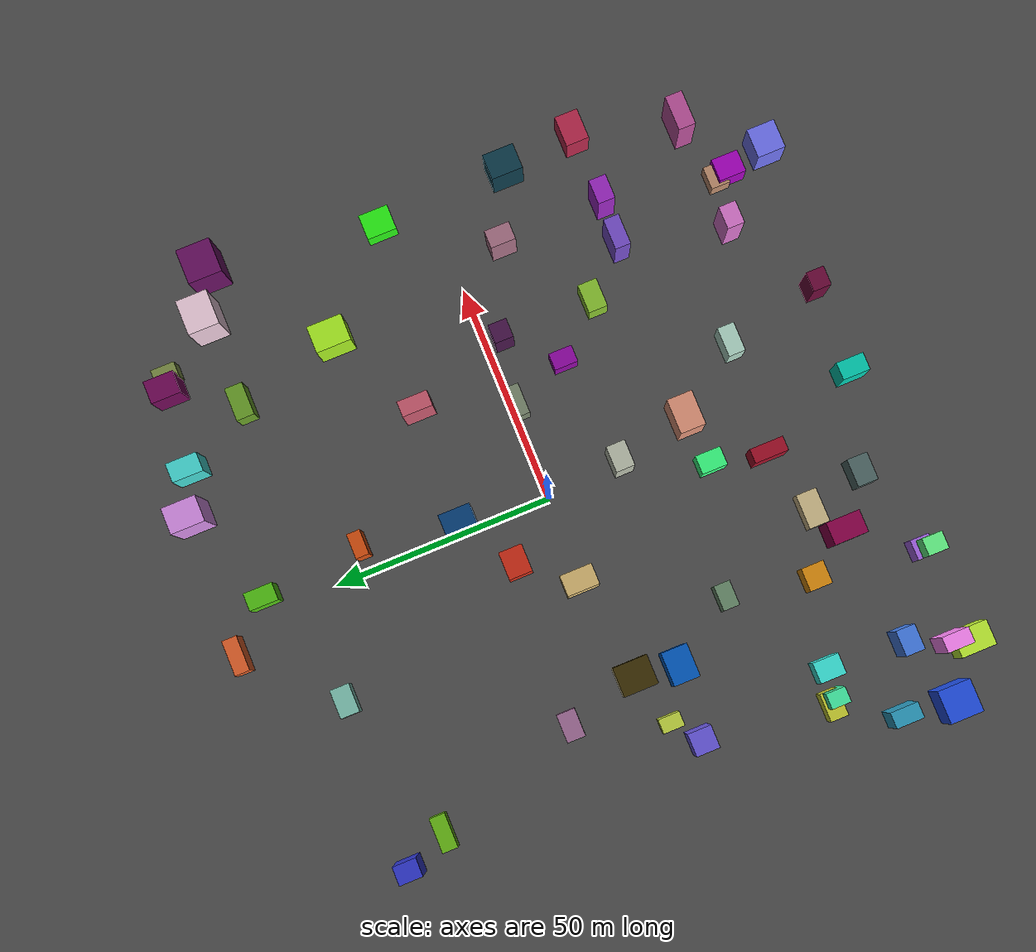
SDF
<?xml version="1.0" ?>
<sdf version="1.8">
  <world name="urban_city">
    <physics name="1ms" type="ignored">
      <max_step_size>0.001</max_step_size>
      <real_time_factor>1.0</real_time_factor>
    </physics>
    <plugin filename="gz-sim-physics-system" name="gz::sim::systems::Physics"></plugin>
    <plugin filename="gz-sim-user-commands-system" name="gz::sim::systems::UserCommands"></plugin>
    <plugin filename="gz-sim-scene-broadcaster-system" name="gz::sim::systems::SceneBroadcaster"></plugin>
    <plugin filename="gz-sim-sensors-system" name="gz::sim::systems::Sensors">
        <render_engine>ogre2</render_engine>
    </plugin>
    <plugin filename="gz-sim-wind-effects-system" name="gz::sim::systems::WindEffects"></plugin>

    <light type="directional" name="sun">
      <cast_shadows>true</cast_shadows>
      <pose>0 0 10 0 0 0</pose>
      <diffuse>0.8 0.8 0.8 1</diffuse>
      <specular>0.2 0.2 0.2 1</specular>
      <direction>-0.5 0.1 -0.9</direction>
    </light>

    <model name="ground_plane">
      <static>true</static>
      <link name="link">
        <collision name="collision">
          <geometry><plane><normal>0 0 1</normal><size>200 200</size></plane></geometry>
          <surface>
            <friction>
              <ode>
                <mu>100</mu>
                <mu2>50</mu2>
              </ode>
            </friction>
          </surface>
        </collision>
        <visual name="visual">
          <geometry><plane><normal>0 0 1</normal><size>200 200</size></plane></geometry>
          <material><ambient>0.3 0.3 0.3 1</ambient><diffuse>0.3 0.3 0.3 1</diffuse></material>
        </visual>
      </link>
    </model>

    <model name="building_0">
      <static>true</static>
      <pose>20.914019768682564 -71.24838671659995 6.182356070820062 0 0 0</pose>
      <link name="link">
        <collision name="collision">
          <geometry><box><size>4.3751465918455965 4.116053690744113 12.364712141640124</size></box></geometry>
        </collision>
        <visual name="visual">
          <geometry><box><size>4.3751465918455965 4.116053690744113 12.364712141640124</size></box></geometry>
          <material>
            <ambient>0.6766994874229113 0.8921795677048454 0.08693883262941615 1</ambient>
            <diffuse>0.4219218196852704 0.029797219438070344 0.21863797480360336 1</diffuse>
          </material>
        </visual>
      </link>
    </model>

    <model name="building_1">
      <static>true</static>
      <pose>0.803293215504354 -71.01960454742046 5.224707403016083 0 0 0</pose>
      <link name="link">
        <collision name="collision">
          <geometry><box><size>3.9941882534332427 6.249422188897616 10.449414806032166</size></box></geometry>
        </collision>
        <visual name="visual">
          <geometry><box><size>3.9941882534332427 6.249422188897616 10.449414806032166</size></box></geometry>
          <material>
            <ambient>0.2204406220406967 0.5892656838759087 0.8094304566778266 1</ambient>
            <diffuse>0.006498759678061017 0.8058192518328079 0.6981393949882269 1</diffuse>
          </material>
        </visual>
      </link>
    </model>

    <model name="building_2">
      <static>true</static>
      <pose>-23.962422522301217 -51.67807502823277 2.9637292169007394 0 0 0</pose>
      <link name="link">
        <collision name="collision">
          <geometry><box><size>7.786065361033906 4.682972725563134 5.927458433801479</size></box></geometry>
        </collision>
        <visual name="visual">
          <geometry><box><size>7.786065361033906 4.682972725563134 5.927458433801479</size></box></geometry>
          <material>
            <ambient>0.09671637683346401 0.8474943663474598 0.6037260313668911 1</ambient>
            <diffuse>0.8071282732743802 0.7297317866938179 0.5362280914547007 1</diffuse>
          </material>
        </visual>
      </link>
    </model>

    <model name="building_3">
      <static>true</static>
      <pose>70.96736459690558 -18.219843418746976 5.592598761821231 0 0 0</pose>
      <link name="link">
        <collision name="collision">
          <geometry><box><size>5.760203156366135 7.1470233212649745 11.185197523642461</size></box></geometry>
        </collision>
        <visual name="visual">
          <geometry><box><size>5.760203156366135 7.1470233212649745 11.185197523642461</size></box></geometry>
          <material>
            <ambient>0.8617069003107772 0.577352145256762 0.7045718362149235 1</ambient>
            <diffuse>0.045824383655662215 0.22789827565154686 0.28938796360210717 1</diffuse>
          </material>
        </visual>
      </link>
    </model>

    <model name="building_4">
      <static>true</static>
      <pose>-63.031203461455874 -40.081367045845475 5.678422221322001 0 0 0</pose>
      <link name="link">
        <collision name="collision">
          <geometry><box><size>3.5050071470486457 4.38986801555046 11.356844442644002</size></box></geometry>
        </collision>
        <visual name="visual">
          <geometry><box><size>3.5050071470486457 4.38986801555046 11.356844442644002</size></box></geometry>
          <material>
            <ambient>0.36483217897008424 0.37018096711688264 0.2095070307714877 1</ambient>
            <diffuse>0.26697782204911336 0.936654587712494 0.6480353852465935 1</diffuse>
          </material>
        </visual>
      </link>
    </model>

    <model name="building_5">
      <static>true</static>
      <pose>16.36965085004823 -49.32920277028545 4.397277208788239 0 0 0</pose>
      <link name="link">
        <collision name="collision">
          <geometry><box><size>6.645633989751746 3.817012468809642 8.794554417576478</size></box></geometry>
        </collision>
        <visual name="visual">
          <geometry><box><size>6.645633989751746 3.817012468809642 8.794554417576478</size></box></geometry>
          <material>
            <ambient>0.9895233506365952 0.6399997598540929 0.5569497437746462 1</ambient>
            <diffuse>0.6846142509898746 0.8428519201898096 0.7759999115462448 1</diffuse>
          </material>
        </visual>
      </link>
    </model>

    <model name="building_6">
      <static>true</static>
      <pose>-40.64278920538435 -70.18496341439433 3.5549142179316324 0 0 0</pose>
      <link name="link">
        <collision name="collision">
          <geometry><box><size>4.577265240295409 4.338704379878513 7.109828435863265</size></box></geometry>
        </collision>
        <visual name="visual">
          <geometry><box><size>4.577265240295409 4.338704379878513 7.109828435863265</size></box></geometry>
          <material>
            <ambient>0.9429097143350544 0.8763676264726689 0.3146778807984779 1</ambient>
            <diffuse>0.65543866529488 0.39563190106066426 0.9145475897405435 1</diffuse>
          </material>
        </visual>
      </link>
    </model>

    <model name="building_7">
      <static>true</static>
      <pose>-6.1722221118901786 -35.26797502529213 3.8137080426146763 0 0 0</pose>
      <link name="link">
        <collision name="collision">
          <geometry><box><size>4.233137538469917 5.806840670815754 7.627416085229353</size></box></geometry>
        </collision>
        <visual name="visual">
          <geometry><box><size>4.233137538469917 5.806840670815754 7.627416085229353</size></box></geometry>
          <material>
            <ambient>0.5845859902235405 0.897822883602477 0.39940050514039727 1</ambient>
            <diffuse>0.21932075915728333 0.9975376064951103 0.5095262936764645 1</diffuse>
          </material>
        </visual>
      </link>
    </model>

    <model name="building_8">
      <static>true</static>
      <pose>-61.363588173930914 -67.93254368628982 6.46039682181482 0 0 0</pose>
      <link name="link">
        <collision name="collision">
          <geometry><box><size>3.548245651753296 6.13723020851545 12.92079364362964</size></box></geometry>
        </collision>
        <visual name="visual">
          <geometry><box><size>3.548245651753296 6.13723020851545 12.92079364362964</size></box></geometry>
          <material>
            <ambient>0.42215996679968404 0.06352770615195713 0.38161928650653676 1</ambient>
            <diffuse>0.9961213802400968 0.529114345099137 0.9710783776136181 1</diffuse>
          </material>
        </visual>
      </link>
    </model>

    <model name="building_9">
      <static>true</static>
      <pose>54.11695533517471 -73.27784670857706 5.184851652043976 0 0 0</pose>
      <link name="link">
        <collision name="collision">
          <geometry><box><size>6.603609096800973 6.408551845132874 10.369703304087952</size></box></geometry>
        </collision>
        <visual name="visual">
          <geometry><box><size>6.603609096800973 6.408551845132874 10.369703304087952</size></box></geometry>
          <material>
            <ambient>0.2668251899525428 0.6409617985798081 0.11155217359587644 1</ambient>
            <diffuse>0.434765250669105 0.45372370632920644 0.9538159275210801 1</diffuse>
          </material>
        </visual>
      </link>
    </model>

    <model name="building_10">
      <static>true</static>
      <pose>56.3779410567291 -35.491642387336384 7.063139196724102 0 0 0</pose>
      <link name="link">
        <collision name="collision">
          <geometry><box><size>5.502930565251491 3.893259402650657 14.126278393448205</size></box></geometry>
        </collision>
        <visual name="visual">
          <geometry><box><size>5.502930565251491 3.893259402650657 14.126278393448205</size></box></geometry>
          <material>
            <ambient>0.8705185698367669 0.2984447914486329 0.6389494948660052 1</ambient>
            <diffuse>0.6089702114381723 0.1528392685496348 0.7625108000751513 1</diffuse>
          </material>
        </visual>
      </link>
    </model>

    <model name="building_11">
      <static>true</static>
      <pose>5.906854517943856 41.79397179458374 4.120780285023366 0 0 0</pose>
      <link name="link">
        <collision name="collision">
          <geometry><box><size>5.651768360975888 3.0028594806397173 8.241560570046731</size></box></geometry>
        </collision>
        <visual name="visual">
          <geometry><box><size>5.651768360975888 3.0028594806397173 8.241560570046731</size></box></geometry>
          <material>
            <ambient>0.019476742385832302 0.9290986162646171 0.8787218778231842 1</ambient>
            <diffuse>0.8316655293611794 0.30751412540266143 0.05792516649418755 1</diffuse>
          </material>
        </visual>
      </link>
    </model>

    <model name="building_12">
      <static>true</static>
      <pose>56.701439880606074 67.04241679469911 2.846062592341918 0 0 0</pose>
      <link name="link">
        <collision name="collision">
          <geometry><box><size>3.428267260339394 5.429952316583069 5.692125184683836</size></box></geometry>
        </collision>
        <visual name="visual">
          <geometry><box><size>3.428267260339394 5.429952316583069 5.692125184683836</size></box></geometry>
          <material>
            <ambient>0.7606021652572316 0.7658344293069878 0.1283914644997628 1</ambient>
            <diffuse>0.4752823780987313 0.5498035934949439 0.2650566289400591 1</diffuse>
          </material>
        </visual>
      </link>
    </model>

    <model name="building_13">
      <static>true</static>
      <pose>55.864956162788616 -11.52930896986696 6.149655345449881 0 0 0</pose>
      <link name="link">
        <collision name="collision">
          <geometry><box><size>4.058991027210411 5.696480443897292 12.299310690899762</size></box></geometry>
        </collision>
        <visual name="visual">
          <geometry><box><size>4.058991027210411 5.696480443897292 12.299310690899762</size></box></geometry>
          <material>
            <ambient>0.2011510633896959 0.31171629130089495 0.9951493566608947 1</ambient>
            <diffuse>0.6498780576394535 0.43810008391450406 0.5175758410355906 1</diffuse>
          </material>
        </visual>
      </link>
    </model>

    <model name="building_14">
      <static>true</static>
      <pose>-56.849370619760144 -41.2953994452664 3.650573662982885 0 0 0</pose>
      <link name="link">
        <collision name="collision">
          <geometry><box><size>4.690427810737276 5.941543592286166 7.30114732596577</size></box></geometry>
        </collision>
        <visual name="visual">
          <geometry><box><size>4.690427810737276 5.941543592286166 7.30114732596577</size></box></geometry>
          <material>
            <ambient>0.22021738445155947 0.07099308600903254 0.6311029572700989 1</ambient>
            <diffuse>0.22894178381115438 0.905420013006128 0.8596354002537465 1</diffuse>
          </material>
        </visual>
      </link>
    </model>

    <model name="building_15">
      <static>true</static>
      <pose>-64.37139751670199 -39.29930484465072 3.161559243625125 0 0 0</pose>
      <link name="link">
        <collision name="collision">
          <geometry><box><size>6.3448888914814034 4.071184036852193 6.32311848725025</size></box></geometry>
        </collision>
        <visual name="visual">
          <geometry><box><size>6.3448888914814034 4.071184036852193 6.32311848725025</size></box></geometry>
          <material>
            <ambient>0.935514240580671 0.5710430933252845 0.47267102631179414 1</ambient>
            <diffuse>0.7846194242907534 0.8074969977666434 0.1904099143618777 1</diffuse>
          </material>
        </visual>
      </link>
    </model>

    <model name="building_16">
      <static>true</static>
      <pose>-60.4603778656765 -10.342322639043374 6.145379247299253 0 0 0</pose>
      <link name="link">
        <collision name="collision">
          <geometry><box><size>5.117893115099604 5.335123340183375 12.290758494598506</size></box></geometry>
        </collision>
        <visual name="visual">
          <geometry><box><size>5.117893115099604 5.335123340183375 12.290758494598506</size></box></geometry>
          <material>
            <ambient>0.6733645472933015 0.9841652113659661 0.09841787115195888 1</ambient>
            <diffuse>0.4026212821022688 0.33930260539496315 0.8616725363527911 1</diffuse>
          </material>
        </visual>
      </link>
    </model>

    <model name="building_17">
      <static>true</static>
      <pose>-37.70154991195716 -46.46866373387827 3.8927257233347023 0 0 0</pose>
      <link name="link">
        <collision name="collision">
          <geometry><box><size>5.243067739165659 5.109408199172021 7.785451446669405</size></box></geometry>
        </collision>
        <visual name="visual">
          <geometry><box><size>5.243067739165659 5.109408199172021 7.785451446669405</size></box></geometry>
          <material>
            <ambient>0.2498064478821005 0.9232655992760128 0.44313074505345695 1</ambient>
            <diffuse>0.8613491047618306 0.5503253124498481 0.05058832952488124 1</diffuse>
          </material>
        </visual>
      </link>
    </model>

    <model name="building_18">
      <static>true</static>
      <pose>74.89237026190898 50.404137761992786 6.743478672071527 0 0 0</pose>
      <link name="link">
        <collision name="collision">
          <geometry><box><size>7.8449812864237565 7.631834915040638 13.486957344143054</size></box></geometry>
        </collision>
        <visual name="visual">
          <geometry><box><size>7.8449812864237565 7.631834915040638 13.486957344143054</size></box></geometry>
          <material>
            <ambient>0.16631111060391401 0.48564112545071847 0.21374729919918167 1</ambient>
            <diffuse>0.4010402925494526 0.058635399972178925 0.3789731189769161 1</diffuse>
          </material>
        </visual>
      </link>
    </model>

    <model name="building_19">
      <static>true</static>
      <pose>72.7963265669589 -35.21954127417721 4.615037429950815 0 0 0</pose>
      <link name="link">
        <collision name="collision">
          <geometry><box><size>6.920353009742847 5.275041836695717 9.23007485990163</size></box></geometry>
        </collision>
        <visual name="visual">
          <geometry><box><size>6.920353009742847 5.275041836695717 9.23007485990163</size></box></geometry>
          <material>
            <ambient>0.9573176408596732 0.9954226894927138 0.5557683234056182 1</ambient>
            <diffuse>0.718408275296326 0.15479682527406413 0.2967078254945642 1</diffuse>
          </material>
        </visual>
      </link>
    </model>

    <model name="building_20">
      <static>true</static>
      <pose>70.30640474537381 11.877043622438435 2.7858263645374155 0 0 0</pose>
      <link name="link">
        <collision name="collision">
          <geometry><box><size>5.7109760068713715 6.739877801895321 5.571652729074831</size></box></geometry>
        </collision>
        <visual name="visual">
          <geometry><box><size>5.7109760068713715 6.739877801895321 5.571652729074831</size></box></geometry>
          <material>
            <ambient>0.5841775944589712 0.5028503829195136 0.8527198920482854 1</ambient>
            <diffuse>0.15743272793948326 0.9607789032744504 0.08011146524058688 1</diffuse>
          </material>
        </visual>
      </link>
    </model>

    <model name="building_21">
      <static>true</static>
      <pose>-47.12625585289152 14.255265967504144 3.099433069735621 0 0 0</pose>
      <link name="link">
        <collision name="collision">
          <geometry><box><size>6.376062768020451 4.176019475004656 6.198866139471242</size></box></geometry>
        </collision>
        <visual name="visual">
          <geometry><box><size>6.376062768020451 4.176019475004656 6.198866139471242</size></box></geometry>
          <material>
            <ambient>0.8902873141294375 0.24621534778862486 0.5945191535334412 1</ambient>
            <diffuse>0.6193815103321031 0.4192249153358725 0.5836722892912247 1</diffuse>
          </material>
        </visual>
      </link>
    </model>

    <model name="building_22">
      <static>true</static>
      <pose>3.417407329793832 65.20593866046408 3.69342976307923 0 0 0</pose>
      <link name="link">
        <collision name="collision">
          <geometry><box><size>4.021295997117682 6.580959003947074 7.38685952615846</size></box></geometry>
        </collision>
        <visual name="visual">
          <geometry><box><size>4.021295997117682 6.580959003947074 7.38685952615846</size></box></geometry>
          <material>
            <ambient>0.3957858467912545 0.6716902229599713 0.2999970797987622 1</ambient>
            <diffuse>0.31617719627185403 0.7518644924144021 0.07254311449315731 1</diffuse>
          </material>
        </visual>
      </link>
    </model>

    <model name="building_23">
      <static>true</static>
      <pose>-6.257171607212086 74.76816612816634 3.565771561335202 0 0 0</pose>
      <link name="link">
        <collision name="collision">
          <geometry><box><size>7.980482239275473 3.3663036054981648 7.131543122670404</size></box></geometry>
        </collision>
        <visual name="visual">
          <geometry><box><size>7.980482239275473 3.3663036054981648 7.131543122670404</size></box></geometry>
          <material>
            <ambient>0.26520041475040135 0.9332593779937091 0.8808641736864395 1</ambient>
            <diffuse>0.8792702424845428 0.36952708873888396 0.15774683235723197 1</diffuse>
          </material>
        </visual>
      </link>
    </model>

    <model name="building_24">
      <static>true</static>
      <pose>50.06174319597105 30.53098876310564 5.7698815885536625 0 0 0</pose>
      <link name="link">
        <collision name="collision">
          <geometry><box><size>6.0583888286297505 7.936165318157522 11.539763177107325</size></box></geometry>
        </collision>
        <visual name="visual">
          <geometry><box><size>6.0583888286297505 7.936165318157522 11.539763177107325</size></box></geometry>
          <material>
            <ambient>0.007823107152157949 0.8171041351154616 0.2993787521999779 1</ambient>
            <diffuse>0.6633887149660773 0.9389300039271039 0.13429111439336772 1</diffuse>
          </material>
        </visual>
      </link>
    </model>

    <model name="building_25">
      <static>true</static>
      <pose>-57.68569943713467 -58.94460334358735 5.52414913515112 0 0 0</pose>
      <link name="link">
        <collision name="collision">
          <geometry><box><size>5.76611820442408 4.361741061574081 11.04829827030224</size></box></geometry>
        </collision>
        <visual name="visual">
          <geometry><box><size>5.76611820442408 4.361741061574081 11.04829827030224</size></box></geometry>
          <material>
            <ambient>0.7176121871387979 0.20359731232745293 0.6342379588850797 1</ambient>
            <diffuse>0.2639839016304094 0.48853185214937656 0.9053364910793232 1</diffuse>
          </material>
        </visual>
      </link>
    </model>

    <model name="building_26">
      <static>true</static>
      <pose>51.915556994228325 -61.155229843089984 2.5177284454389115 0 0 0</pose>
      <link name="link">
        <collision name="collision">
          <geometry><box><size>5.117878862818632 4.383401119861258 5.035456890877823</size></box></geometry>
        </collision>
        <visual name="visual">
          <geometry><box><size>5.117878862818632 4.383401119861258 5.035456890877823</size></box></geometry>
          <material>
            <ambient>0.7711192230196271 0.6371133773013796 0.2619552624343482 1</ambient>
            <diffuse>0.7412309083479308 0.5516804211263913 0.42768691898067934 1</diffuse>
          </material>
        </visual>
      </link>
    </model>

    <model name="building_27">
      <static>true</static>
      <pose>-73.549545058749 -63.71342098893494 5.227951446027612 0 0 0</pose>
      <link name="link">
        <collision name="collision">
          <geometry><box><size>7.415531966500715 7.519642857799465 10.455902892055224</size></box></geometry>
        </collision>
        <visual name="visual">
          <geometry><box><size>7.415531966500715 7.519642857799465 10.455902892055224</size></box></geometry>
          <material>
            <ambient>0.8345950198860167 0.582509566489794 0.14809378556748265 1</ambient>
            <diffuse>0.12744551928213876 0.3082583499301337 0.89898148874259 1</diffuse>
          </material>
        </visual>
      </link>
    </model>

    <model name="building_28">
      <static>true</static>
      <pose>44.41834573320625 54.10538730013542 3.7476486961146223 0 0 0</pose>
      <link name="link">
        <collision name="collision">
          <geometry><box><size>7.494623182632373 4.05038269169877 7.4952973922292445</size></box></geometry>
        </collision>
        <visual name="visual">
          <geometry><box><size>7.494623182632373 4.05038269169877 7.4952973922292445</size></box></geometry>
          <material>
            <ambient>0.10279362167178563 0.7801162418714427 0.8841347014510089 1</ambient>
            <diffuse>0.4063773898321168 0.6206615101507128 0.15455333833220464 1</diffuse>
          </material>
        </visual>
      </link>
    </model>

    <model name="building_29">
      <static>true</static>
      <pose>64.48215235405115 54.6908544329946 6.907081023316622 0 0 0</pose>
      <link name="link">
        <collision name="collision">
          <geometry><box><size>7.881030164654814 7.053858599701984 13.814162046633244</size></box></geometry>
        </collision>
        <visual name="visual">
          <geometry><box><size>7.881030164654814 7.053858599701984 13.814162046633244</size></box></geometry>
          <material>
            <ambient>0.024786361898188725 0.7365644717550821 0.33218546794642867 1</ambient>
            <diffuse>0.9308158860483255 0.8022351389371389 0.8640640283752794 1</diffuse>
          </material>
        </visual>
      </link>
    </model>

    <model name="building_30">
      <static>true</static>
      <pose>46.61239748615834 -34.97914356082919 6.860833914530449 0 0 0</pose>
      <link name="link">
        <collision name="collision">
          <geometry><box><size>6.936872545677356 3.5404781320147856 13.721667829060898</size></box></geometry>
        </collision>
        <visual name="visual">
          <geometry><box><size>6.936872545677356 3.5404781320147856 13.721667829060898</size></box></geometry>
          <material>
            <ambient>0.8585932513377816 0.22243371754566443 0.816586605596929 1</ambient>
            <diffuse>0.4603032346789421 0.30519086733860057 0.7953454991528618 1</diffuse>
          </material>
        </visual>
      </link>
    </model>

    <model name="building_31">
      <static>true</static>
      <pose>-40.86067688883445 -71.45033479478226 6.821764710151432 0 0 0</pose>
      <link name="link">
        <collision name="collision">
          <geometry><box><size>3.9656489416385434 4.641309755988533 13.643529420302864</size></box></geometry>
        </collision>
        <visual name="visual">
          <geometry><box><size>3.9656489416385434 4.641309755988533 13.643529420302864</size></box></geometry>
          <material>
            <ambient>0.9668891040483611 0.2791249927218714 0.6414817386076277 1</ambient>
            <diffuse>0.39967838436006087 0.9811496871982601 0.5362157324787219 1</diffuse>
          </material>
        </visual>
      </link>
    </model>

    <model name="building_32">
      <static>true</static>
      <pose>65.88557104870736 -57.69873722228586 7.312671578807778 0 0 0</pose>
      <link name="link">
        <collision name="collision">
          <geometry><box><size>7.8520030551111395 3.892839080862318 14.625343157615555</size></box></geometry>
        </collision>
        <visual name="visual">
          <geometry><box><size>7.8520030551111395 3.892839080862318 14.625343157615555</size></box></geometry>
          <material>
            <ambient>0.2654663625229686 0.1084025472147111 0.43456375856464435 1</ambient>
            <diffuse>0.7285450606527043 0.31367731419499123 0.6062088533061433 1</diffuse>
          </material>
        </visual>
      </link>
    </model>

    <model name="building_33">
      <static>true</static>
      <pose>1.7134589504217104 -17.220684998290928 6.0439264191708535 0 0 0</pose>
      <link name="link">
        <collision name="collision">
          <geometry><box><size>5.8829402174829974 4.27361253069291 12.087852838341707</size></box></geometry>
        </collision>
        <visual name="visual">
          <geometry><box><size>5.8829402174829974 4.27361253069291 12.087852838341707</size></box></geometry>
          <material>
            <ambient>0.0016912782186294661 0.9255751654990827 0.5384519970927919 1</ambient>
            <diffuse>0.7194299991448455 0.7419500778394765 0.6706285044329995 1</diffuse>
          </material>
        </visual>
      </link>
    </model>

    <model name="building_34">
      <static>true</static>
      <pose>-20.366779232810373 -64.50392833105347 4.0695782252917985 0 0 0</pose>
      <link name="link">
        <collision name="collision">
          <geometry><box><size>6.321188424556362 4.651000180212982 8.139156450583597</size></box></geometry>
        </collision>
        <visual name="visual">
          <geometry><box><size>6.321188424556362 4.651000180212982 8.139156450583597</size></box></geometry>
          <material>
            <ambient>0.8480152795063355 0.7197542630139502 0.3003222682112642 1</ambient>
            <diffuse>0.30928466220865325 0.40839290861921684 0.40240038705772463 1</diffuse>
          </material>
        </visual>
      </link>
    </model>

    <model name="building_35">
      <static>true</static>
      <pose>-30.65171962110795 -55.90683014112702 5.886589726363665 0 0 0</pose>
      <link name="link">
        <collision name="collision">
          <geometry><box><size>5.102231668864541 7.701818353650915 11.77317945272733</size></box></geometry>
        </collision>
        <visual name="visual">
          <geometry><box><size>5.102231668864541 7.701818353650915 11.77317945272733</size></box></geometry>
          <material>
            <ambient>0.9028055457325826 0.6155149159513805 0.3009498745655653 1</ambient>
            <diffuse>0.5479372131356982 0.0004059396972875273 0.2869137168689272 1</diffuse>
          </material>
        </visual>
      </link>
    </model>

    <model name="building_36">
      <static>true</static>
      <pose>-10.516777501524814 11.997717179352293 4.710798996524037 0 0 0</pose>
      <link name="link">
        <collision name="collision">
          <geometry><box><size>6.273528118515358 5.324940951235071 9.421597993048074</size></box></geometry>
        </collision>
        <visual name="visual">
          <geometry><box><size>6.273528118515358 5.324940951235071 9.421597993048074</size></box></geometry>
          <material>
            <ambient>0.2137014009891003 0.47318618590932626 0.9011808258282542 1</ambient>
            <diffuse>0.7960247601267803 0.16969139619805473 0.08479553672512175 1</diffuse>
          </material>
        </visual>
      </link>
    </model>

    <model name="building_37">
      <static>true</static>
      <pose>2.317801487282466 19.941128364869357 6.255690687703661 0 0 0</pose>
      <link name="link">
        <collision name="collision">
          <geometry><box><size>4.675941277049004 7.092117322683321 12.511381375407321</size></box></geometry>
        </collision>
        <visual name="visual">
          <geometry><box><size>4.675941277049004 7.092117322683321 12.511381375407321</size></box></geometry>
          <material>
            <ambient>0.672795670557167 0.22464066599728827 0.19912993272657664 1</ambient>
            <diffuse>0.024425387726826342 0.24484254407835015 0.47513634421880513 1</diffuse>
          </material>
        </visual>
      </link>
    </model>

    <model name="building_38">
      <static>true</static>
      <pose>52.460654193709786 -64.07576562231463 3.4721761836985463 0 0 0</pose>
      <link name="link">
        <collision name="collision">
          <geometry><box><size>5.072205054988597 6.148826903688569 6.944352367397093</size></box></geometry>
        </collision>
        <visual name="visual">
          <geometry><box><size>5.072205054988597 6.148826903688569 6.944352367397093</size></box></geometry>
          <material>
            <ambient>0.6963542504905049 0.49437716901043693 0.24398443957843885 1</ambient>
            <diffuse>0.6560580111117841 0.00554481813803176 0.7509644766184729 1</diffuse>
          </material>
        </visual>
      </link>
    </model>

    <model name="building_39">
      <static>true</static>
      <pose>40.50692828610376 -59.01190551546916 7.289830211397699 0 0 0</pose>
      <link name="link">
        <collision name="collision">
          <geometry><box><size>5.12573096971367 3.879433408532658 14.579660422795397</size></box></geometry>
        </collision>
        <visual name="visual">
          <geometry><box><size>5.12573096971367 3.879433408532658 14.579660422795397</size></box></geometry>
          <material>
            <ambient>0.5179577504437408 0.05021838514064092 0.24919827965997166 1</ambient>
            <diffuse>0.8483363473516597 0.45646182547017256 0.8014166017222645 1</diffuse>
          </material>
        </visual>
      </link>
    </model>

    <model name="building_40">
      <static>true</static>
      <pose>25.136659887952973 73.18386795996722 6.957129629052185 0 0 0</pose>
      <link name="link">
        <collision name="collision">
          <geometry><box><size>5.977261592347098 7.7501980422157795 13.91425925810437</size></box></geometry>
        </collision>
        <visual name="visual">
          <geometry><box><size>5.977261592347098 7.7501980422157795 13.91425925810437</size></box></geometry>
          <material>
            <ambient>0.6126523227617628 0.7192739612759671 0.504778164824402 1</ambient>
            <diffuse>0.830569169721415 0.5478719506108284 0.8972081032332622 1</diffuse>
          </material>
        </visual>
      </link>
    </model>

    <model name="building_41">
      <static>true</static>
      <pose>36.54831632393774 -3.798834476541998 5.688307183880781 0 0 0</pose>
      <link name="link">
        <collision name="collision">
          <geometry><box><size>4.295957742325097 4.236198687548297 11.376614367761562</size></box></geometry>
        </collision>
        <visual name="visual">
          <geometry><box><size>4.295957742325097 4.236198687548297 11.376614367761562</size></box></geometry>
          <material>
            <ambient>0.7658136842971655 0.5212998128279821 0.6267484369817813 1</ambient>
            <diffuse>0.2745974469175383 0.07748335386473582 0.2857281508631525 1</diffuse>
          </material>
        </visual>
      </link>
    </model>

    <model name="building_42">
      <static>true</static>
      <pose>-34.24273393767231 -27.043564737185655 3.656307398640934 0 0 0</pose>
      <link name="link">
        <collision name="collision">
          <geometry><box><size>5.700761112592282 3.6918703075807784 7.312614797281868</size></box></geometry>
        </collision>
        <visual name="visual">
          <geometry><box><size>5.700761112592282 3.6918703075807784 7.312614797281868</size></box></geometry>
          <material>
            <ambient>0.6939498122990523 0.7064191416945522 0.06422885071387807 1</ambient>
            <diffuse>0.4075993696665867 0.5426111405039153 0.41577423410315595 1</diffuse>
          </material>
        </visual>
      </link>
    </model>

    <model name="building_43">
      <static>true</static>
      <pose>-43.974841572838464 -11.978472333986154 5.977614932489841 0 0 0</pose>
      <link name="link">
        <collision name="collision">
          <geometry><box><size>7.524192391700884 5.920397071021126 11.955229864979682</size></box></geometry>
        </collision>
        <visual name="visual">
          <geometry><box><size>7.524192391700884 5.920397071021126 11.955229864979682</size></box></geometry>
          <material>
            <ambient>0.8567320323039342 0.7655945761180695 0.38038102892771164 1</ambient>
            <diffuse>0.0058960835839930725 0.3517588026718247 0.7534751250593859 1</diffuse>
          </material>
        </visual>
      </link>
    </model>

    <model name="building_44">
      <static>true</static>
      <pose>53.01719258536568 68.01455077051594 5.230661548669195 0 0 0</pose>
      <link name="link">
        <collision name="collision">
          <geometry><box><size>5.095106413149109 6.737578344890254 10.46132309733839</size></box></geometry>
        </collision>
        <visual name="visual">
          <geometry><box><size>5.095106413149109 6.737578344890254 10.46132309733839</size></box></geometry>
          <material>
            <ambient>0.6032525889412413 0.2205386943238189 0.21942163462143616 1</ambient>
            <diffuse>0.4358359760466366 0.02902481994671524 0.33612954369838244 1</diffuse>
          </material>
        </visual>
      </link>
    </model>

    <model name="building_45">
      <static>true</static>
      <pose>26.871282754252462 -14.35249962935444 3.1381389864058034 0 0 0</pose>
      <link name="link">
        <collision name="collision">
          <geometry><box><size>3.825223656017544 5.33695074616155 6.276277972811607</size></box></geometry>
        </collision>
        <visual name="visual">
          <geometry><box><size>3.825223656017544 5.33695074616155 6.276277972811607</size></box></geometry>
          <material>
            <ambient>0.6222569609740647 0.02696645190513769 0.3940202563397047 1</ambient>
            <diffuse>0.5643919830247741 0.027102046340312436 0.6427496480093358 1</diffuse>
          </material>
        </visual>
      </link>
    </model>

    <model name="building_46">
      <static>true</static>
      <pose>-54.64507691541536 -5.745233392273235 3.5583014210574078 0 0 0</pose>
      <link name="link">
        <collision name="collision">
          <geometry><box><size>3.2514231674431375 4.895519320940698 7.1166028421148155</size></box></geometry>
        </collision>
        <visual name="visual">
          <geometry><box><size>3.2514231674431375 4.895519320940698 7.1166028421148155</size></box></geometry>
          <material>
            <ambient>0.32684580488130854 0.7612297078940271 0.3791262155641363 1</ambient>
            <diffuse>0.7520098235547849 0.8319242851552726 0.2522715317823806 1</diffuse>
          </material>
        </visual>
      </link>
    </model>

    <model name="building_47">
      <static>true</static>
      <pose>-62.71406508575362 -72.0925069424984 4.24980171860092 0 0 0</pose>
      <link name="link">
        <collision name="collision">
          <geometry><box><size>5.697095239612668 7.9995391425460465 8.49960343720184</size></box></geometry>
        </collision>
        <visual name="visual">
          <geometry><box><size>5.697095239612668 7.9995391425460465 8.49960343720184</size></box></geometry>
          <material>
            <ambient>0.650144093249875 0.7812330496108949 0.6517546552438894 1</ambient>
            <diffuse>0.7542332040595262 0.9496117327159889 0.1993606823625329 1</diffuse>
          </material>
        </visual>
      </link>
    </model>

    <model name="building_48">
      <static>true</static>
      <pose>-71.94299740195015 -52.142648132281444 5.319847909650095 0 0 0</pose>
      <link name="link">
        <collision name="collision">
          <geometry><box><size>3.6311048743710312 6.347294223099553 10.63969581930019</size></box></geometry>
        </collision>
        <visual name="visual">
          <geometry><box><size>3.6311048743710312 6.347294223099553 10.63969581930019</size></box></geometry>
          <material>
            <ambient>0.21796454090650363 0.6994649712461508 0.7668980983562408 1</ambient>
            <diffuse>0.16778914336780226 0.6072474938909317 0.7479256519552858 1</diffuse>
          </material>
        </visual>
      </link>
    </model>

    <model name="building_49">
      <static>true</static>
      <pose>-57.820069293165346 47.89517614666276 2.62839212748733 0 0 0</pose>
      <link name="link">
        <collision name="collision">
          <geometry><box><size>7.823603865170439 3.540493748288033 5.25678425497466</size></box></geometry>
        </collision>
        <visual name="visual">
          <geometry><box><size>7.823603865170439 3.540493748288033 5.25678425497466</size></box></geometry>
          <material>
            <ambient>0.3119572443946952 0.6773472868504088 0.9581728382058959 1</ambient>
            <diffuse>0.3966544415166273 0.7150147050494684 0.07599647784305996 1</diffuse>
          </material>
        </visual>
      </link>
    </model>

    <model name="building_50">
      <static>true</static>
      <pose>28.59216238994705 19.086359340156662 6.751466195443982 0 0 0</pose>
      <link name="link">
        <collision name="collision">
          <geometry><box><size>3.509506527229883 6.86240442475612 13.502932390887963</size></box></geometry>
        </collision>
        <visual name="visual">
          <geometry><box><size>3.509506527229883 6.86240442475612 13.502932390887963</size></box></geometry>
          <material>
            <ambient>0.6004116148168441 0.12105506506731512 0.9838443515146713 1</ambient>
            <diffuse>0.7826353463610196 0.347203765308449 0.42837801323474445 1</diffuse>
          </material>
        </visual>
      </link>
    </model>

    <model name="building_51">
      <static>true</static>
      <pose>-19.414368567291575 0.8941184515616811 6.61165459045029 0 0 0</pose>
      <link name="link">
        <collision name="collision">
          <geometry><box><size>4.7061558743064165 7.247878134997887 13.22330918090058</size></box></geometry>
        </collision>
        <visual name="visual">
          <geometry><box><size>4.7061558743064165 7.247878134997887 13.22330918090058</size></box></geometry>
          <material>
            <ambient>0.10553887064399858 0.9607875672145786 0.6355851061014459 1</ambient>
            <diffuse>0.8287073110024582 0.7073086437060769 0.43548714500767705 1</diffuse>
          </material>
        </visual>
      </link>
    </model>

    <model name="building_52">
      <static>true</static>
      <pose>35.06929560200878 69.82105968571165 5.190864532241279 0 0 0</pose>
      <link name="link">
        <collision name="collision">
          <geometry><box><size>4.350411981937004 7.04099609403378 10.381729064482558</size></box></geometry>
        </collision>
        <visual name="visual">
          <geometry><box><size>4.350411981937004 7.04099609403378 10.381729064482558</size></box></geometry>
          <material>
            <ambient>0.4834975038831961 0.4355744930038943 0.7310262143051223 1</ambient>
            <diffuse>0.26839553804922534 0.8517131600193318 0.8307310188906034 1</diffuse>
          </material>
        </visual>
      </link>
    </model>

    <model name="building_53">
      <static>true</static>
      <pose>-62.00056529164884 57.2446776004158 5.5516585211526035 0 0 0</pose>
      <link name="link">
        <collision name="collision">
          <geometry><box><size>4.21931719595478 5.323542333016158 11.103317042305207</size></box></geometry>
        </collision>
        <visual name="visual">
          <geometry><box><size>4.21931719595478 5.323542333016158 11.103317042305207</size></box></geometry>
          <material>
            <ambient>0.37898930412826404 0.02869999777008958 0.8509528363124591 1</ambient>
            <diffuse>0.1818398571576918 0.212119850179739 0.7978323568280965 1</diffuse>
          </material>
        </visual>
      </link>
    </model>

    <model name="building_54">
      <static>true</static>
      <pose>-23.949173525357452 57.04799696373382 2.5507555721933857 0 0 0</pose>
      <link name="link">
        <collision name="collision">
          <geometry><box><size>6.505918751661008 4.3813428787809245 5.101511144386771</size></box></geometry>
        </collision>
        <visual name="visual">
          <geometry><box><size>6.505918751661008 4.3813428787809245 5.101511144386771</size></box></geometry>
          <material>
            <ambient>0.9480625777770312 0.08561296195802126 0.7200746641041943 1</ambient>
            <diffuse>0.48857784684878736 0.7581646534824664 0.690609339446523 1</diffuse>
          </material>
        </visual>
      </link>
    </model>

    <model name="building_55">
      <static>true</static>
      <pose>21.885434961142835 -1.3767997382120711 3.6079820023626508 0 0 0</pose>
      <link name="link">
        <collision name="collision">
          <geometry><box><size>6.964664340661587 3.4652667527733585 7.2159640047253015</size></box></geometry>
        </collision>
        <visual name="visual">
          <geometry><box><size>6.964664340661587 3.4652667527733585 7.2159640047253015</size></box></geometry>
          <material>
            <ambient>0.6917871552952018 0.3062060301300884 0.5815555853323672 1</ambient>
            <diffuse>0.47326048875952476 0.5309219311457678 0.42550381270521476 1</diffuse>
          </material>
        </visual>
      </link>
    </model>

    <model name="building_56">
      <static>true</static>
      <pose>36.89031550704145 -25.38130542061048 3.7570183810047073 0 0 0</pose>
      <link name="link">
        <collision name="collision">
          <geometry><box><size>6.514274710928845 4.354582134880982 7.514036762009415</size></box></geometry>
        </collision>
        <visual name="visual">
          <geometry><box><size>6.514274710928845 4.354582134880982 7.514036762009415</size></box></geometry>
          <material>
            <ambient>0.12065588475230582 0.1925842934515174 0.11955474125505283 1</ambient>
            <diffuse>0.5358639653837498 0.762189609484103 0.18514984243766197 1</diffuse>
          </material>
        </visual>
      </link>
    </model>

    <model name="building_57">
      <static>true</static>
      <pose>-42.54230401820915 -2.370211918093702 5.12318434554304 0 0 0</pose>
      <link name="link">
        <collision name="collision">
          <geometry><box><size>6.622925005465258 7.883035114415284 10.24636869108608</size></box></geometry>
        </collision>
        <visual name="visual">
          <geometry><box><size>6.622925005465258 7.883035114415284 10.24636869108608</size></box></geometry>
          <material>
            <ambient>0.282998703274955 0.10052610809079077 0.19411757809107344 1</ambient>
            <diffuse>0.2274831634825547 0.17944154368540333 0.014148367256063832 1</diffuse>
          </material>
        </visual>
      </link>
    </model>

    <model name="building_58">
      <static>true</static>
      <pose>5.120263390149489 -33.85330098250991 5.987086964550972 0 0 0</pose>
      <link name="link">
        <collision name="collision">
          <geometry><box><size>7.87147465551369 5.766794833993042 11.974173929101944</size></box></geometry>
        </collision>
        <visual name="visual">
          <geometry><box><size>7.87147465551369 5.766794833993042 11.974173929101944</size></box></geometry>
          <material>
            <ambient>0.1262794929584089 0.868461197262944 0.49087869452377886 1</ambient>
            <diffuse>0.8727197349985346 0.5740642196263323 0.4693969449305102 1</diffuse>
          </material>
        </visual>
      </link>
    </model>

    <model name="building_59">
      <static>true</static>
      <pose>-8.929680279598458 -47.345449441487744 4.888645936328438 0 0 0</pose>
      <link name="link">
        <collision name="collision">
          <geometry><box><size>3.256883585917889 7.705317983840517 9.777291872656876</size></box></geometry>
        </collision>
        <visual name="visual">
          <geometry><box><size>3.256883585917889 7.705317983840517 9.777291872656876</size></box></geometry>
          <material>
            <ambient>0.8221156452994304 0.40070744225193977 0.07408217025563979 1</ambient>
            <diffuse>0.6294457069519983 0.05360907429253314 0.14919758447365516 1</diffuse>
          </material>
        </visual>
      </link>
    </model>

  </world>
</sdf>
